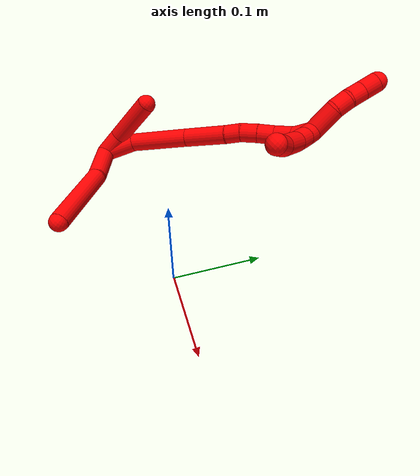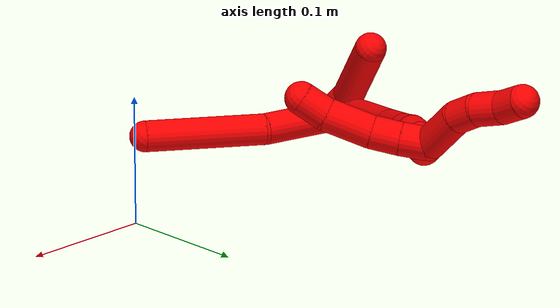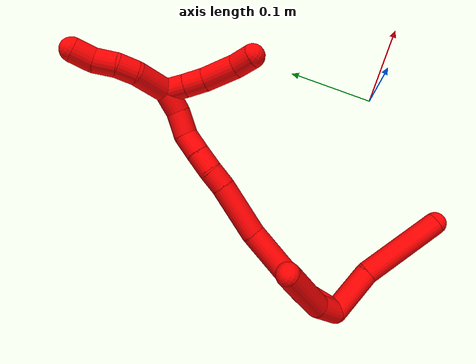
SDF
<sdf version="1.7">
 <world name="default">
  <model name="2">
   <static>0</static>
   <link name="2">
    <collision name="collision-cylinder-e_1_2_8">
     <pose>0.025591 -0.002785 -0.008449 2.8232 1.23622 2.69745</pose>
     <geometry><cylinder><radius>0.0125</radius><length>0.054187</length></cylinder></geometry>
     <surface>
      <friction><ode><mu>1.16</mu><mu2>1.16</mu2><slip1>0</slip1><slip2>0</slip2></ode></friction>
      <contact><ode><kp>1e+06</kp><kd>1</kd><max_vel>0</max_vel><min_depth>0.001</min_depth></ode></contact>
     </surface>
    </collision>
    <visual name="visual-cylinder-e_1_2_8">
     <pose>0.025591 -0.002785 -0.008449 2.8232 1.23622 2.69745</pose>
     <geometry><cylinder><radius>0.0125</radius><length>0.054187</length></cylinder></geometry>
     <material><ambient>1 0 0 1</ambient></material>
    </visual>
    <collision name="collision-cylinder-e_2_8_6">
     <pose>0.092259 -0.019977 -0.036902 2.51741 1.03028 2.1056</pose>
     <geometry><cylinder><radius>0.0125</radius><length>0.095813</length></cylinder></geometry>
     <surface>
      <friction><ode><mu>1.16</mu><mu2>1.16</mu2><slip1>0</slip1><slip2>0</slip2></ode></friction>
      <contact><ode><kp>1e+06</kp><kd>1</kd><max_vel>0</max_vel><min_depth>0.001</min_depth></ode></contact>
     </surface>
    </collision>
    <visual name="visual-cylinder-e_2_8_6">
     <pose>0.092259 -0.019977 -0.036902 2.51741 1.03028 2.1056</pose>
     <geometry><cylinder><radius>0.0125</radius><length>0.095813</length></cylinder></geometry>
     <material><ambient>1 0 0 1</ambient></material>
    </visual>
    <collision name="collision-cylinder-e_1_2_9">
     <pose>-6.9e-05 -1.4e-05 0.015917 0.000895 -0.004314 -2e-06</pose>
     <geometry><cylinder><radius>0.0125</radius><length>0.031834</length></cylinder></geometry>
     <surface>
      <friction><ode><mu>1.16</mu><mu2>1.16</mu2><slip1>0</slip1><slip2>0</slip2></ode></friction>
      <contact><ode><kp>1e+06</kp><kd>1</kd><max_vel>0</max_vel><min_depth>0.001</min_depth></ode></contact>
     </surface>
    </collision>
    <visual name="visual-cylinder-e_1_2_9">
     <pose>-6.9e-05 -1.4e-05 0.015917 0.000895 -0.004314 -2e-06</pose>
     <geometry><cylinder><radius>0.0125</radius><length>0.031834</length></cylinder></geometry>
     <material><ambient>1 0 0 1</ambient></material>
    </visual>
    <collision name="collision-cylinder-e_2_9_5">
     <pose>0.009538 -0.002953 0.064383 0.08962 0.287839 0.012996</pose>
     <geometry><cylinder><radius>0.0125</radius><length>0.068166</length></cylinder></geometry>
     <surface>
      <friction><ode><mu>1.16</mu><mu2>1.16</mu2><slip1>0</slip1><slip2>0</slip2></ode></friction>
      <contact><ode><kp>1e+06</kp><kd>1</kd><max_vel>0</max_vel><min_depth>0.001</min_depth></ode></contact>
     </surface>
    </collision>
    <visual name="visual-cylinder-e_2_9_5">
     <pose>0.009538 -0.002953 0.064383 0.08962 0.287839 0.012996</pose>
     <geometry><cylinder><radius>0.0125</radius><length>0.068166</length></cylinder></geometry>
     <material><ambient>1 0 0 1</ambient></material>
    </visual>
    <collision name="collision-cylinder-e_1_2_10">
     <pose>0.002523 0.010186 0.018858 -0.495269 0.117182 -0.029658</pose>
     <geometry><cylinder><radius>0.0125</radius><length>0.043162</length></cylinder></geometry>
     <surface>
      <friction><ode><mu>1.16</mu><mu2>1.16</mu2><slip1>0</slip1><slip2>0</slip2></ode></friction>
      <contact><ode><kp>1e+06</kp><kd>1</kd><max_vel>0</max_vel><min_depth>0.001</min_depth></ode></contact>
     </surface>
    </collision>
    <visual name="visual-cylinder-e_1_2_10">
     <pose>0.002523 0.010186 0.018858 -0.495269 0.117182 -0.029658</pose>
     <geometry><cylinder><radius>0.0125</radius><length>0.043162</length></cylinder></geometry>
     <material><ambient>1 0 0 1</ambient></material>
    </visual>
    <collision name="collision-cylinder-e_2_10_11">
     <pose>0.022125 0.04151 0.067871 -0.611347 0.434258 -0.139007</pose>
     <geometry><cylinder><radius>0.0125</radius><length>0.081187</length></cylinder></geometry>
     <surface>
      <friction><ode><mu>1.16</mu><mu2>1.16</mu2><slip1>0</slip1><slip2>0</slip2></ode></friction>
      <contact><ode><kp>1e+06</kp><kd>1</kd><max_vel>0</max_vel><min_depth>0.001</min_depth></ode></contact>
     </surface>
    </collision>
    <visual name="visual-cylinder-e_2_10_11">
     <pose>0.022125 0.04151 0.067871 -0.611347 0.434258 -0.139007</pose>
     <geometry><cylinder><radius>0.0125</radius><length>0.081187</length></cylinder></geometry>
     <material><ambient>1 0 0 1</ambient></material>
    </visual>
    <collision name="collision-cylinder-e_3_11_12">
     <pose>0.054785 0.075486 0.119314 -0.54273 0.559848 -0.159626</pose>
     <geometry><cylinder><radius>0.0125</radius><length>0.058677</length></cylinder></geometry>
     <surface>
      <friction><ode><mu>1.16</mu><mu2>1.16</mu2><slip1>0</slip1><slip2>0</slip2></ode></friction>
      <contact><ode><kp>1e+06</kp><kd>1</kd><max_vel>0</max_vel><min_depth>0.001</min_depth></ode></contact>
     </surface>
    </collision>
    <visual name="visual-cylinder-e_3_11_12">
     <pose>0.054785 0.075486 0.119314 -0.54273 0.559848 -0.159626</pose>
     <geometry><cylinder><radius>0.0125</radius><length>0.058677</length></cylinder></geometry>
     <material><ambient>1 0 0 1</ambient></material>
    </visual>
    <collision name="collision-cylinder-e_4_12_13">
     <pose>0.074956 0.093162 0.14856 -0.546018 0.457926 -0.130323</pose>
     <geometry><cylinder><radius>0.0125</radius><length>0.020766</length></cylinder></geometry>
     <surface>
      <friction><ode><mu>1.16</mu><mu2>1.16</mu2><slip1>0</slip1><slip2>0</slip2></ode></friction>
      <contact><ode><kp>1e+06</kp><kd>1</kd><max_vel>0</max_vel><min_depth>0.001</min_depth></ode></contact>
     </surface>
    </collision>
    <visual name="visual-cylinder-e_4_12_13">
     <pose>0.074956 0.093162 0.14856 -0.546018 0.457926 -0.130323</pose>
     <geometry><cylinder><radius>0.0125</radius><length>0.020766</length></cylinder></geometry>
     <material><ambient>1 0 0 1</ambient></material>
    </visual>
    <collision name="collision-cylinder-e_5_13_14">
     <pose>0.085083 0.104613 0.163797 -0.737794 0.512767 -0.202004</pose>
     <geometry><cylinder><radius>0.0125</radius><length>0.022573</length></cylinder></geometry>
     <surface>
      <friction><ode><mu>1.16</mu><mu2>1.16</mu2><slip1>0</slip1><slip2>0</slip2></ode></friction>
      <contact><ode><kp>1e+06</kp><kd>1</kd><max_vel>0</max_vel><min_depth>0.001</min_depth></ode></contact>
     </surface>
    </collision>
    <visual name="visual-cylinder-e_5_13_14">
     <pose>0.085083 0.104613 0.163797 -0.737794 0.512767 -0.202004</pose>
     <geometry><cylinder><radius>0.0125</radius><length>0.022573</length></cylinder></geometry>
     <material><ambient>1 0 0 1</ambient></material>
    </visual>
    <collision name="collision-cylinder-e_6_14_15">
     <pose>0.096455 0.118226 0.178036 -0.787961 0.533914 -0.226412</pose>
     <geometry><cylinder><radius>0.0125</radius><length>0.022933</length></cylinder></geometry>
     <surface>
      <friction><ode><mu>1.16</mu><mu2>1.16</mu2><slip1>0</slip1><slip2>0</slip2></ode></friction>
      <contact><ode><kp>1e+06</kp><kd>1</kd><max_vel>0</max_vel><min_depth>0.001</min_depth></ode></contact>
     </surface>
    </collision>
    <visual name="visual-cylinder-e_6_14_15">
     <pose>0.096455 0.118226 0.178036 -0.787961 0.533914 -0.226412</pose>
     <geometry><cylinder><radius>0.0125</radius><length>0.022933</length></cylinder></geometry>
     <material><ambient>1 0 0 1</ambient></material>
    </visual>
    <collision name="collision-cylinder-e_7_15_16">
     <pose>0.11182 0.129815 0.192812 -0.531141 0.810463 -0.232307</pose>
     <geometry><cylinder><radius>0.0125</radius><length>0.026303</length></cylinder></geometry>
     <surface>
      <friction><ode><mu>1.16</mu><mu2>1.16</mu2><slip1>0</slip1><slip2>0</slip2></ode></friction>
      <contact><ode><kp>1e+06</kp><kd>1</kd><max_vel>0</max_vel><min_depth>0.001</min_depth></ode></contact>
     </surface>
    </collision>
    <visual name="visual-cylinder-e_7_15_16">
     <pose>0.11182 0.129815 0.192812 -0.531141 0.810463 -0.232307</pose>
     <geometry><cylinder><radius>0.0125</radius><length>0.026303</length></cylinder></geometry>
     <material><ambient>1 0 0 1</ambient></material>
    </visual>
    <collision name="collision-cylinder-e_8_16_1">
     <pose>0.127955 0.137398 0.210438 -0.296065 0.572118 -0.087666</pose>
     <geometry><cylinder><radius>0.0125</radius><length>0.024399</length></cylinder></geometry>
     <surface>
      <friction><ode><mu>1.16</mu><mu2>1.16</mu2><slip1>0</slip1><slip2>0</slip2></ode></friction>
      <contact><ode><kp>1e+06</kp><kd>1</kd><max_vel>0</max_vel><min_depth>0.001</min_depth></ode></contact>
     </surface>
    </collision>
    <visual name="visual-cylinder-e_8_16_1">
     <pose>0.127955 0.137398 0.210438 -0.296065 0.572118 -0.087666</pose>
     <geometry><cylinder><radius>0.0125</radius><length>0.024399</length></cylinder></geometry>
     <material><ambient>1 0 0 1</ambient></material>
    </visual>
    <collision name="collision-cylinder-e_1_1_17">
     <pose>0.134687 0.140388 0.238952 0.000151 0.006774 1e-06</pose>
     <geometry><cylinder><radius>0.0125</radius><length>0.037408</length></cylinder></geometry>
     <surface>
      <friction><ode><mu>1.16</mu><mu2>1.16</mu2><slip1>0</slip1><slip2>0</slip2></ode></friction>
      <contact><ode><kp>1e+06</kp><kd>1</kd><max_vel>0</max_vel><min_depth>0.001</min_depth></ode></contact>
     </surface>
    </collision>
    <visual name="visual-cylinder-e_1_1_17">
     <pose>0.134687 0.140388 0.238952 0.000151 0.006774 1e-06</pose>
     <geometry><cylinder><radius>0.0125</radius><length>0.037408</length></cylinder></geometry>
     <material><ambient>1 0 0 1</ambient></material>
    </visual>
    <collision name="collision-cylinder-e_2_17_18">
     <pose>0.133656 0.143192 0.267281 -0.283806 -0.114971 0.016443</pose>
     <geometry><cylinder><radius>0.0125</radius><length>0.020186</length></cylinder></geometry>
     <surface>
      <friction><ode><mu>1.16</mu><mu2>1.16</mu2><slip1>0</slip1><slip2>0</slip2></ode></friction>
      <contact><ode><kp>1e+06</kp><kd>1</kd><max_vel>0</max_vel><min_depth>0.001</min_depth></ode></contact>
     </surface>
    </collision>
    <visual name="visual-cylinder-e_2_17_18">
     <pose>0.133656 0.143192 0.267281 -0.283806 -0.114971 0.016443</pose>
     <geometry><cylinder><radius>0.0125</radius><length>0.020186</length></cylinder></geometry>
     <material><ambient>1 0 0 1</ambient></material>
    </visual>
    <collision name="collision-cylinder-e_3_18_19">
     <pose>0.129662 0.151056 0.28598 -0.508368 -0.266522 0.069628</pose>
     <geometry><cylinder><radius>0.0125</radius><length>0.021534</length></cylinder></geometry>
     <surface>
      <friction><ode><mu>1.16</mu><mu2>1.16</mu2><slip1>0</slip1><slip2>0</slip2></ode></friction>
      <contact><ode><kp>1e+06</kp><kd>1</kd><max_vel>0</max_vel><min_depth>0.001</min_depth></ode></contact>
     </surface>
    </collision>
    <visual name="visual-cylinder-e_3_18_19">
     <pose>0.129662 0.151056 0.28598 -0.508368 -0.266522 0.069628</pose>
     <geometry><cylinder><radius>0.0125</radius><length>0.021534</length></cylinder></geometry>
     <material><ambient>1 0 0 1</ambient></material>
    </visual>
    <collision name="collision-cylinder-e_4_19_4">
     <pose>0.126597 0.159637 0.304873 -0.344661 -0.02197 0.003824</pose>
     <geometry><cylinder><radius>0.0125</radius><length>0.020872</length></cylinder></geometry>
     <surface>
      <friction><ode><mu>1.16</mu><mu2>1.16</mu2><slip1>0</slip1><slip2>0</slip2></ode></friction>
      <contact><ode><kp>1e+06</kp><kd>1</kd><max_vel>0</max_vel><min_depth>0.001</min_depth></ode></contact>
     </surface>
    </collision>
    <visual name="visual-cylinder-e_4_19_4">
     <pose>0.126597 0.159637 0.304873 -0.344661 -0.02197 0.003824</pose>
     <geometry><cylinder><radius>0.0125</radius><length>0.020872</length></cylinder></geometry>
     <material><ambient>1 0 0 1</ambient></material>
    </visual>
    <collision name="collision-cylinder-e_1_1_20">
     <pose>0.14108 0.134146 0.21499 2.27066 0.67387 1.29072</pose>
     <geometry><cylinder><radius>0.0125</radius><length>0.020895</length></cylinder></geometry>
     <surface>
      <friction><ode><mu>1.16</mu><mu2>1.16</mu2><slip1>0</slip1><slip2>0</slip2></ode></friction>
      <contact><ode><kp>1e+06</kp><kd>1</kd><max_vel>0</max_vel><min_depth>0.001</min_depth></ode></contact>
     </surface>
    </collision>
    <visual name="visual-cylinder-e_1_1_20">
     <pose>0.14108 0.134146 0.21499 2.27066 0.67387 1.29072</pose>
     <geometry><cylinder><radius>0.0125</radius><length>0.020895</length></cylinder></geometry>
     <material><ambient>1 0 0 1</ambient></material>
    </visual>
    <collision name="collision-cylinder-e_2_20_21">
     <pose>0.154533 0.120998 0.204827 2.18852 0.686124 1.21059</pose>
     <geometry><cylinder><radius>0.0125</radius><length>0.021888</length></cylinder></geometry>
     <surface>
      <friction><ode><mu>1.16</mu><mu2>1.16</mu2><slip1>0</slip1><slip2>0</slip2></ode></friction>
      <contact><ode><kp>1e+06</kp><kd>1</kd><max_vel>0</max_vel><min_depth>0.001</min_depth></ode></contact>
     </surface>
    </collision>
    <visual name="visual-cylinder-e_2_20_21">
     <pose>0.154533 0.120998 0.204827 2.18852 0.686124 1.21059</pose>
     <geometry><cylinder><radius>0.0125</radius><length>0.021888</length></cylinder></geometry>
     <material><ambient>1 0 0 1</ambient></material>
    </visual>
    <collision name="collision-cylinder-e_3_21_22">
     <pose>0.17312 0.101644 0.194605 1.97445 0.710695 1.02406</pose>
     <geometry><cylinder><radius>0.0125</radius><length>0.035729</length></cylinder></geometry>
     <surface>
      <friction><ode><mu>1.16</mu><mu2>1.16</mu2><slip1>0</slip1><slip2>0</slip2></ode></friction>
      <contact><ode><kp>1e+06</kp><kd>1</kd><max_vel>0</max_vel><min_depth>0.001</min_depth></ode></contact>
     </surface>
    </collision>
    <visual name="visual-cylinder-e_3_21_22">
     <pose>0.17312 0.101644 0.194605 1.97445 0.710695 1.02406</pose>
     <geometry><cylinder><radius>0.0125</radius><length>0.035729</length></cylinder></geometry>
     <material><ambient>1 0 0 1</ambient></material>
    </visual>
    <collision name="collision-cylinder-e_4_22_3">
     <pose>0.191481 0.080847 0.188388 1.67809 0.674156 0.744101</pose>
     <geometry><cylinder><radius>0.0125</radius><length>0.021488</length></cylinder></geometry>
     <surface>
      <friction><ode><mu>1.16</mu><mu2>1.16</mu2><slip1>0</slip1><slip2>0</slip2></ode></friction>
      <contact><ode><kp>1e+06</kp><kd>1</kd><max_vel>0</max_vel><min_depth>0.001</min_depth></ode></contact>
     </surface>
    </collision>
    <visual name="visual-cylinder-e_4_22_3">
     <pose>0.191481 0.080847 0.188388 1.67809 0.674156 0.744101</pose>
     <geometry><cylinder><radius>0.0125</radius><length>0.021488</length></cylinder></geometry>
     <material><ambient>1 0 0 1</ambient></material>
    </visual>
    <collision name="collision-sphere-3">
     <pose>0.198188 0.072502 0.187489 0 -0 0</pose>
     <geometry><sphere><radius>0.0125</radius></sphere></geometry>
     <surface>
      <friction><ode><mu>1.16</mu><mu2>1.16</mu2><slip1>0</slip1><slip2>0</slip2></ode></friction>
      <contact><ode><kp>1e+06</kp><kd>1</kd><max_vel>0</max_vel><min_depth>0.001</min_depth></ode></contact>
     </surface>
    </collision>
    <visual name="visual-sphere-3">
     <pose>0.198188 0.072502 0.187489 0 -0 0</pose>
     <geometry><sphere><radius>0.0125</radius></sphere></geometry>
     <material><ambient>1 0 0 1</ambient></material>
    </visual>
    <collision name="collision-sphere-22">
     <pose>0.184774 0.089192 0.189287 0 -0 0</pose>
     <geometry><sphere><radius>0.0125</radius></sphere></geometry>
     <surface>
      <friction><ode><mu>1.16</mu><mu2>1.16</mu2><slip1>0</slip1><slip2>0</slip2></ode></friction>
      <contact><ode><kp>1e+06</kp><kd>1</kd><max_vel>0</max_vel><min_depth>0.001</min_depth></ode></contact>
     </surface>
    </collision>
    <visual name="visual-sphere-22">
     <pose>0.184774 0.089192 0.189287 0 -0 0</pose>
     <geometry><sphere><radius>0.0125</radius></sphere></geometry>
     <material><ambient>1 0 0 1</ambient></material>
    </visual>
    <collision name="collision-sphere-21">
     <pose>0.161466 0.114096 0.199923 0 -0 0</pose>
     <geometry><sphere><radius>0.0125</radius></sphere></geometry>
     <surface>
      <friction><ode><mu>1.16</mu><mu2>1.16</mu2><slip1>0</slip1><slip2>0</slip2></ode></friction>
      <contact><ode><kp>1e+06</kp><kd>1</kd><max_vel>0</max_vel><min_depth>0.001</min_depth></ode></contact>
     </surface>
    </collision>
    <visual name="visual-sphere-21">
     <pose>0.161466 0.114096 0.199923 0 -0 0</pose>
     <geometry><sphere><radius>0.0125</radius></sphere></geometry>
     <material><ambient>1 0 0 1</ambient></material>
    </visual>
    <collision name="collision-sphere-20">
     <pose>0.147599 0.127901 0.209731 0 -0 0</pose>
     <geometry><sphere><radius>0.0125</radius></sphere></geometry>
     <surface>
      <friction><ode><mu>1.16</mu><mu2>1.16</mu2><slip1>0</slip1><slip2>0</slip2></ode></friction>
      <contact><ode><kp>1e+06</kp><kd>1</kd><max_vel>0</max_vel><min_depth>0.001</min_depth></ode></contact>
     </surface>
    </collision>
    <visual name="visual-sphere-20">
     <pose>0.147599 0.127901 0.209731 0 -0 0</pose>
     <geometry><sphere><radius>0.0125</radius></sphere></geometry>
     <material><ambient>1 0 0 1</ambient></material>
    </visual>
    <collision name="collision-sphere-4">
     <pose>0.126368 0.163162 0.314692 0 -0 0</pose>
     <geometry><sphere><radius>0.0125</radius></sphere></geometry>
     <surface>
      <friction><ode><mu>1.16</mu><mu2>1.16</mu2><slip1>0</slip1><slip2>0</slip2></ode></friction>
      <contact><ode><kp>1e+06</kp><kd>1</kd><max_vel>0</max_vel><min_depth>0.001</min_depth></ode></contact>
     </surface>
    </collision>
    <visual name="visual-sphere-4">
     <pose>0.126368 0.163162 0.314692 0 -0 0</pose>
     <geometry><sphere><radius>0.0125</radius></sphere></geometry>
     <material><ambient>1 0 0 1</ambient></material>
    </visual>
    <collision name="collision-sphere-10">
     <pose>0.005046 0.020373 0.037715 0 -0 0</pose>
     <geometry><sphere><radius>0.0125</radius></sphere></geometry>
     <surface>
      <friction><ode><mu>1.16</mu><mu2>1.16</mu2><slip1>0</slip1><slip2>0</slip2></ode></friction>
      <contact><ode><kp>1e+06</kp><kd>1</kd><max_vel>0</max_vel><min_depth>0.001</min_depth></ode></contact>
     </surface>
    </collision>
    <visual name="visual-sphere-10">
     <pose>0.005046 0.020373 0.037715 0 -0 0</pose>
     <geometry><sphere><radius>0.0125</radius></sphere></geometry>
     <material><ambient>1 0 0 1</ambient></material>
    </visual>
    <collision name="collision-sphere-5">
     <pose>0.019214 -0.005878 0.096933 0 -0 0</pose>
     <geometry><sphere><radius>0.0125</radius></sphere></geometry>
     <surface>
      <friction><ode><mu>1.16</mu><mu2>1.16</mu2><slip1>0</slip1><slip2>0</slip2></ode></friction>
      <contact><ode><kp>1e+06</kp><kd>1</kd><max_vel>0</max_vel><min_depth>0.001</min_depth></ode></contact>
     </surface>
    </collision>
    <visual name="visual-sphere-5">
     <pose>0.019214 -0.005878 0.096933 0 -0 0</pose>
     <geometry><sphere><radius>0.0125</radius></sphere></geometry>
     <material><ambient>1 0 0 1</ambient></material>
    </visual>
    <collision name="collision-sphere-6">
     <pose>0.133336 -0.034385 -0.056906 0 -0 0</pose>
     <geometry><sphere><radius>0.0125</radius></sphere></geometry>
     <surface>
      <friction><ode><mu>1.16</mu><mu2>1.16</mu2><slip1>0</slip1><slip2>0</slip2></ode></friction>
      <contact><ode><kp>1e+06</kp><kd>1</kd><max_vel>0</max_vel><min_depth>0.001</min_depth></ode></contact>
     </surface>
    </collision>
    <visual name="visual-sphere-6">
     <pose>0.133336 -0.034385 -0.056906 0 -0 0</pose>
     <geometry><sphere><radius>0.0125</radius></sphere></geometry>
     <material><ambient>1 0 0 1</ambient></material>
    </visual>
    <collision name="collision-sphere-9">
     <pose>-0.000137 -2.9e-05 0.031834 0 -0 0</pose>
     <geometry><sphere><radius>0.0125</radius></sphere></geometry>
     <surface>
      <friction><ode><mu>1.16</mu><mu2>1.16</mu2><slip1>0</slip1><slip2>0</slip2></ode></friction>
      <contact><ode><kp>1e+06</kp><kd>1</kd><max_vel>0</max_vel><min_depth>0.001</min_depth></ode></contact>
     </surface>
    </collision>
    <visual name="visual-sphere-9">
     <pose>-0.000137 -2.9e-05 0.031834 0 -0 0</pose>
     <geometry><sphere><radius>0.0125</radius></sphere></geometry>
     <material><ambient>1 0 0 1</ambient></material>
    </visual>
    <collision name="collision-sphere-2">
     <geometry><sphere><radius>0.0125</radius></sphere></geometry>
     <surface>
      <friction><ode><mu>1.16</mu><mu2>1.16</mu2><slip1>0</slip1><slip2>0</slip2></ode></friction>
      <contact><ode><kp>1e+06</kp><kd>1</kd><max_vel>0</max_vel><min_depth>0.001</min_depth></ode></contact>
     </surface>
    </collision>
    <visual name="visual-sphere-2">
     <geometry><sphere><radius>0.0125</radius></sphere></geometry>
     <material><ambient>1 0 0 1</ambient></material>
    </visual>
    <collision name="collision-sphere-19">
     <pose>0.126826 0.156111 0.295053 0 -0 0</pose>
     <geometry><sphere><radius>0.0125</radius></sphere></geometry>
     <surface>
      <friction><ode><mu>1.16</mu><mu2>1.16</mu2><slip1>0</slip1><slip2>0</slip2></ode></friction>
      <contact><ode><kp>1e+06</kp><kd>1</kd><max_vel>0</max_vel><min_depth>0.001</min_depth></ode></contact>
     </surface>
    </collision>
    <visual name="visual-sphere-19">
     <pose>0.126826 0.156111 0.295053 0 -0 0</pose>
     <geometry><sphere><radius>0.0125</radius></sphere></geometry>
     <material><ambient>1 0 0 1</ambient></material>
    </visual>
    <collision name="collision-sphere-8">
     <pose>0.051182 -0.00557 -0.016899 0 -0 0</pose>
     <geometry><sphere><radius>0.0125</radius></sphere></geometry>
     <surface>
      <friction><ode><mu>1.16</mu><mu2>1.16</mu2><slip1>0</slip1><slip2>0</slip2></ode></friction>
      <contact><ode><kp>1e+06</kp><kd>1</kd><max_vel>0</max_vel><min_depth>0.001</min_depth></ode></contact>
     </surface>
    </collision>
    <visual name="visual-sphere-8">
     <pose>0.051182 -0.00557 -0.016899 0 -0 0</pose>
     <geometry><sphere><radius>0.0125</radius></sphere></geometry>
     <material><ambient>1 0 0 1</ambient></material>
    </visual>
    <collision name="collision-sphere-11">
     <pose>0.039205 0.062647 0.098027 0 -0 0</pose>
     <geometry><sphere><radius>0.0125</radius></sphere></geometry>
     <surface>
      <friction><ode><mu>1.16</mu><mu2>1.16</mu2><slip1>0</slip1><slip2>0</slip2></ode></friction>
      <contact><ode><kp>1e+06</kp><kd>1</kd><max_vel>0</max_vel><min_depth>0.001</min_depth></ode></contact>
     </surface>
    </collision>
    <visual name="visual-sphere-11">
     <pose>0.039205 0.062647 0.098027 0 -0 0</pose>
     <geometry><sphere><radius>0.0125</radius></sphere></geometry>
     <material><ambient>1 0 0 1</ambient></material>
    </visual>
    <collision name="collision-sphere-12">
     <pose>0.070365 0.088325 0.140601 0 -0 0</pose>
     <geometry><sphere><radius>0.0125</radius></sphere></geometry>
     <surface>
      <friction><ode><mu>1.16</mu><mu2>1.16</mu2><slip1>0</slip1><slip2>0</slip2></ode></friction>
      <contact><ode><kp>1e+06</kp><kd>1</kd><max_vel>0</max_vel><min_depth>0.001</min_depth></ode></contact>
     </surface>
    </collision>
    <visual name="visual-sphere-12">
     <pose>0.070365 0.088325 0.140601 0 -0 0</pose>
     <geometry><sphere><radius>0.0125</radius></sphere></geometry>
     <material><ambient>1 0 0 1</ambient></material>
    </visual>
    <collision name="collision-sphere-13">
     <pose>0.079546 0.097998 0.156519 0 -0 0</pose>
     <geometry><sphere><radius>0.0125</radius></sphere></geometry>
     <surface>
      <friction><ode><mu>1.16</mu><mu2>1.16</mu2><slip1>0</slip1><slip2>0</slip2></ode></friction>
      <contact><ode><kp>1e+06</kp><kd>1</kd><max_vel>0</max_vel><min_depth>0.001</min_depth></ode></contact>
     </surface>
    </collision>
    <visual name="visual-sphere-13">
     <pose>0.079546 0.097998 0.156519 0 -0 0</pose>
     <geometry><sphere><radius>0.0125</radius></sphere></geometry>
     <material><ambient>1 0 0 1</ambient></material>
    </visual>
    <collision name="collision-sphere-14">
     <pose>0.09062 0.111229 0.171074 0 -0 0</pose>
     <geometry><sphere><radius>0.0125</radius></sphere></geometry>
     <surface>
      <friction><ode><mu>1.16</mu><mu2>1.16</mu2><slip1>0</slip1><slip2>0</slip2></ode></friction>
      <contact><ode><kp>1e+06</kp><kd>1</kd><max_vel>0</max_vel><min_depth>0.001</min_depth></ode></contact>
     </surface>
    </collision>
    <visual name="visual-sphere-14">
     <pose>0.09062 0.111229 0.171074 0 -0 0</pose>
     <geometry><sphere><radius>0.0125</radius></sphere></geometry>
     <material><ambient>1 0 0 1</ambient></material>
    </visual>
    <collision name="collision-sphere-15">
     <pose>0.102291 0.125224 0.184997 0 -0 0</pose>
     <geometry><sphere><radius>0.0125</radius></sphere></geometry>
     <surface>
      <friction><ode><mu>1.16</mu><mu2>1.16</mu2><slip1>0</slip1><slip2>0</slip2></ode></friction>
      <contact><ode><kp>1e+06</kp><kd>1</kd><max_vel>0</max_vel><min_depth>0.001</min_depth></ode></contact>
     </surface>
    </collision>
    <visual name="visual-sphere-15">
     <pose>0.102291 0.125224 0.184997 0 -0 0</pose>
     <geometry><sphere><radius>0.0125</radius></sphere></geometry>
     <material><ambient>1 0 0 1</ambient></material>
    </visual>
    <collision name="collision-sphere-16">
     <pose>0.12135 0.134406 0.200627 0 -0 0</pose>
     <geometry><sphere><radius>0.0125</radius></sphere></geometry>
     <surface>
      <friction><ode><mu>1.16</mu><mu2>1.16</mu2><slip1>0</slip1><slip2>0</slip2></ode></friction>
      <contact><ode><kp>1e+06</kp><kd>1</kd><max_vel>0</max_vel><min_depth>0.001</min_depth></ode></contact>
     </surface>
    </collision>
    <visual name="visual-sphere-16">
     <pose>0.12135 0.134406 0.200627 0 -0 0</pose>
     <geometry><sphere><radius>0.0125</radius></sphere></geometry>
     <material><ambient>1 0 0 1</ambient></material>
    </visual>
    <collision name="collision-sphere-1">
     <pose>0.13456 0.140391 0.220248 0 -0 0</pose>
     <geometry><sphere><radius>0.0125</radius></sphere></geometry>
     <surface>
      <friction><ode><mu>1.16</mu><mu2>1.16</mu2><slip1>0</slip1><slip2>0</slip2></ode></friction>
      <contact><ode><kp>1e+06</kp><kd>1</kd><max_vel>0</max_vel><min_depth>0.001</min_depth></ode></contact>
     </surface>
    </collision>
    <visual name="visual-sphere-1">
     <pose>0.13456 0.140391 0.220248 0 -0 0</pose>
     <geometry><sphere><radius>0.0125</radius></sphere></geometry>
     <material><ambient>1 0 0 1</ambient></material>
    </visual>
    <collision name="collision-sphere-18">
     <pose>0.132498 0.146 0.276907 0 -0 0</pose>
     <geometry><sphere><radius>0.0125</radius></sphere></geometry>
     <surface>
      <friction><ode><mu>1.16</mu><mu2>1.16</mu2><slip1>0</slip1><slip2>0</slip2></ode></friction>
      <contact><ode><kp>1e+06</kp><kd>1</kd><max_vel>0</max_vel><min_depth>0.001</min_depth></ode></contact>
     </surface>
    </collision>
    <visual name="visual-sphere-18">
     <pose>0.132498 0.146 0.276907 0 -0 0</pose>
     <geometry><sphere><radius>0.0125</radius></sphere></geometry>
     <material><ambient>1 0 0 1</ambient></material>
    </visual>
    <collision name="collision-sphere-17">
     <pose>0.134814 0.140385 0.257656 0 -0 0</pose>
     <geometry><sphere><radius>0.0125</radius></sphere></geometry>
     <surface>
      <friction><ode><mu>1.16</mu><mu2>1.16</mu2><slip1>0</slip1><slip2>0</slip2></ode></friction>
      <contact><ode><kp>1e+06</kp><kd>1</kd><max_vel>0</max_vel><min_depth>0.001</min_depth></ode></contact>
     </surface>
    </collision>
    <visual name="visual-sphere-17">
     <pose>0.134814 0.140385 0.257656 0 -0 0</pose>
     <geometry><sphere><radius>0.0125</radius></sphere></geometry>
     <material><ambient>1 0 0 1</ambient></material>
    </visual>
    <inertial>
     <pose>0.07673 0.060391 0.109507 0 -0 0</pose>
     <mass>0.75</mass>
     <inertia>
      <ixx>0.000157</ixx>
      <ixy>0</ixy>
      <ixz>0</ixz>
      <iyy>0.000237</iyy>
      <iyz>0</iyz>
      <izz>-0.000115</izz>
     </inertia>
    </inertial>
   </link>
   <pose>-0.245359 -0.040605 0.015258 -0.771499 -0.105856 -0.064054</pose>
  </model>
 </world>
</sdf>
